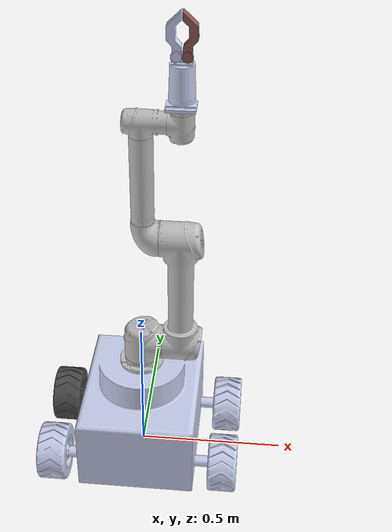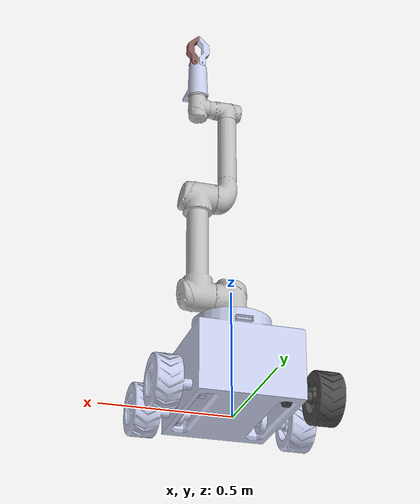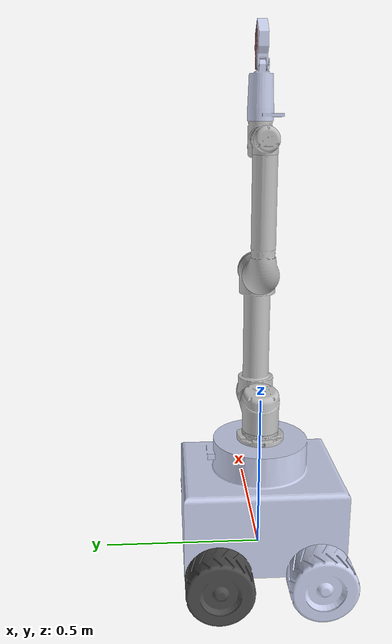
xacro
<?xml version="1.0" encoding="utf-8"?>
<robot
  name="ur5">
  <link
    name="base_link">
    <inertial>
      <origin
        xyz="-5.5152E-11 1.9904E-05 0.16846"
        rpy="0 0 0" />
      <mass
        value="55.664" />
      <inertia
        ixx="1.6047"
        ixy="-2.9519E-09"
        ixz="3.1164E-10"
        iyy="1.1438"
        iyz="-0.0001762"
        izz="1.7331" />
    </inertial>
    <visual>
      <origin
        xyz="0 0 0"
        rpy="0 0 0" />
      <geometry>
        <mesh
          filename="package://robot/meshes/base_link.STL" />
      </geometry>
      <material
        name="">
        <color
          rgba="0.79216 0.81961 0.93333 1" />
      </material>
    </visual>
    <collision>
      <origin
        xyz="0 0 0"
        rpy="0 0 0" />
      <geometry>
        <mesh
          filename="package://robot/meshes/base_link.STL" />
      </geometry>
    </collision>
  </link>
  <link
    name="wheel_1">
    <inertial>
      <origin
        xyz="0.19663 -2.7756E-16 -2.7756E-16"
        rpy="0 0 0" />
      <mass
        value="2.7279" />
      <inertia
        ixx="0.013534"
        ixy="-3.8224E-13"
        ixz="-8.2573E-13"
        iyy="0.0098358"
        iyz="-2.493E-12"
        izz="0.0098358" />
    </inertial>
    <visual>
      <origin
        xyz="0 0 0"
        rpy="0 0 0" />
      <geometry>
        <mesh
          filename="package://robot/meshes/wheel_1.STL" />
      </geometry>
      <material
        name="">
        <color
          rgba="0.79216 0.81961 0.93333 1" />
      </material>
    </visual>
    <collision>
      <origin
        xyz="0 0 0"
        rpy="0 0 0" />
      <geometry>
        <mesh
          filename="package://robot/meshes/wheel_1.STL" />
      </geometry>
    </collision>
  </link>
  <joint
    name="c_1"
    type="continuous">
    <origin
      xyz="0.09 -0.15 0.05"
      rpy="0 0 0" />
    <parent
      link="base_link" />
    <child
      link="wheel_1" />
    <axis
      xyz="-1 0 0" />
  </joint>
  <link
    name="wheel_2">
    <inertial>
      <origin
        xyz="0.19663 -1.1102E-16 -2.7756E-17"
        rpy="0 0 0" />
      <mass
        value="2.7279" />
      <inertia
        ixx="0.013534"
        ixy="-9.0945E-13"
        ixz="-2.879E-14"
        iyy="0.0098358"
        iyz="-1.9519E-12"
        izz="0.0098358" />
    </inertial>
    <visual>
      <origin
        xyz="0 0 0"
        rpy="0 0 0" />
      <geometry>
        <mesh
          filename="package://robot/meshes/wheel_2.STL" />
      </geometry>
      <material
        name="">
        <color
          rgba="0.79216 0.81961 0.93333 1" />
      </material>
    </visual>
    <collision>
      <origin
        xyz="0 0 0"
        rpy="0 0 0" />
      <geometry>
        <mesh
          filename="package://robot/meshes/wheel_2.STL" />
      </geometry>
    </collision>
  </link>
  <joint
    name="c_2"
    type="continuous">
    <origin
      xyz="0.09 0.15 0.05"
      rpy="0 0 0" />
    <parent
      link="base_link" />
    <child
      link="wheel_2" />
    <axis
      xyz="-1 0 0" />
  </joint>
  <link
    name="wheel_3">
    <inertial>
      <origin
        xyz="0.062982 -2.2204E-16 2.7756E-17"
        rpy="0 0 0" />
      <mass
        value="2.7485" />
      <inertia
        ixx="0.013714"
        ixy="-1.6296E-16"
        ixz="-2.1277E-13"
        iyy="0.0099243"
        iyz="-6.6257E-11"
        izz="0.0099243" />
    </inertial>
    <visual>
      <origin
        xyz="0 0 0"
        rpy="0 0 0" />
      <geometry>
        <mesh
          filename="package://robot/meshes/wheel_3.STL" />
      </geometry>
      <material
        name="">
        <color
          rgba="0.79216 0.81961 0.93333 1" />
      </material>
    </visual>
    <collision>
      <origin
        xyz="0 0 0"
        rpy="0 0 0" />
      <geometry>
        <mesh
          filename="package://robot/meshes/wheel_3.STL" />
      </geometry>
    </collision>
  </link>
  <joint
    name="c_3"
    type="continuous">
    <origin
      xyz="-0.34971 -0.15 0.05"
      rpy="0 0 0" />
    <parent
      link="base_link" />
    <child
      link="wheel_3" />
    <axis
      xyz="1 0 0" />
  </joint>
  <link
    name="wheel_4">
    <inertial>
      <origin
        xyz="0.062982 0 2.7756E-17"
        rpy="0 0 0" />
      <mass
        value="2.7485" />
      <inertia
        ixx="0.013714"
        ixy="-5.3206E-14"
        ixz="-2.0601E-13"
        iyy="0.0099243"
        iyz="-4.8086E-11"
        izz="0.0099243" />
    </inertial>
    <visual>
      <origin
        xyz="0 0 0"
        rpy="0 0 0" />
      <geometry>
        <mesh
          filename="package://robot/meshes/wheel_4.STL" />
      </geometry>
      <material
        name="">
        <color
          rgba="0.29412 0.29412 0.29412 1" />
      </material>
    </visual>
    <collision>
      <origin
        xyz="0 0 0"
        rpy="0 0 0" />
      <geometry>
        <mesh
          filename="package://robot/meshes/wheel_4.STL" />
      </geometry>
    </collision>
  </link>
  <joint
    name="c_4"
    type="continuous">
    <origin
      xyz="-0.34971 0.15 0.05"
      rpy="0 0 0" />
    <parent
      link="base_link" />
    <child
      link="wheel_4" />
    <axis
      xyz="-1 0 0" />
  </joint>
  <link
    name="base">
    <inertial>
      <origin
        xyz="-0.00059402 -1.0336E-08 0.013337"
        rpy="0 0 0" />
      <mass
        value="0.44131" />
      <inertia
        ixx="0.00055426"
        ixy="-1.9731E-10"
        ixz="2.1555E-06"
        iyy="0.0005192"
        iyz="6.7421E-12"
        izz="0.00096502" />
    </inertial>
    <visual>
      <origin
        xyz="0 0 0"
        rpy="0 0 0" />
      <geometry>
        <mesh
          filename="package://robot/meshes/base.STL" />
      </geometry>
      <material
        name="">
        <color
          rgba="0.75294 0.75294 0.75294 1" />
      </material>
    </visual>
    <collision>
      <origin
        xyz="0 0 0"
        rpy="0 0 0" />
      <geometry>
        <mesh
          filename="package://robot/meshes/base.STL" />
      </geometry>
    </collision>
  </link>
  <joint
    name="fix_b"
    type="fixed">
    <origin
      xyz="0 0 0.378"
      rpy="0 0 0" />
    <parent
      link="base_link" />
    <child
      link="base" />
    <axis
      xyz="0 0 0" />
  </joint>
  <link
    name="L_1">
    <inertial>
      <origin
        xyz="0.015035 5.242E-06 0.087179"
        rpy="0 0 0" />
      <mass
        value="1.515" />
      <inertia
        ixx="0.0024757"
        ixy="-3.8202E-07"
        ixz="-0.00032467"
        iyy="0.0025758"
        iyz="-1.478E-07"
        izz="0.0028299" />
    </inertial>
    <visual>
      <origin
        xyz="0 0 0"
        rpy="0 0 0" />
      <geometry>
        <mesh
          filename="package://robot/meshes/L_1.STL" />
      </geometry>
      <material
        name="">
        <color
          rgba="0.75294 0.75294 0.75294 1" />
      </material>
    </visual>
    <collision>
      <origin
        xyz="0 0 0"
        rpy="0 0 0" />
      <geometry>
        <mesh
          filename="package://robot/meshes/L_1.STL" />
      </geometry>
    </collision>
  </link>
  <joint
    name="rev1"
    type="revolute">
    <origin
      xyz="0 0 0"
      rpy="0 0 0" />
    <parent
      link="base" />
    <child
      link="L_1" />
    <axis
      xyz="0 0 -1" />
    <limit
      lower="-0.7854"
      upper="0.7854"
      effort="0"
      velocity="0" />
  </joint>
  <link
    name="L_2">
    <inertial>
      <origin
        xyz="0.079614 1.2378E-08 0.216"
        rpy="0 0 0" />
      <mass
        value="4.6673" />
      <inertia
        ixx="0.021929"
        ixy="-2.0695E-09"
        ixz="-7.1914E-09"
        iyy="0.021355"
        iyz="7.5736E-07"
        izz="0.0064409" />
    </inertial>
    <visual>
      <origin
        xyz="0 0 0"
        rpy="0 0 0" />
      <geometry>
        <mesh
          filename="package://robot/meshes/L_2.STL" />
      </geometry>
      <material
        name="">
        <color
          rgba="0.75294 0.75294 0.75294 1" />
      </material>
    </visual>
    <collision>
      <origin
        xyz="0 0 0"
        rpy="0 0 0" />
      <geometry>
        <mesh
          filename="package://robot/meshes/L_2.STL" />
      </geometry>
    </collision>
  </link>
  <joint
    name="rev_2"
    type="revolute">
    <origin
      xyz="0.053822 0 0.088"
      rpy="0 0 0" />
    <parent
      link="L_1" />
    <child
      link="L_2" />
    <axis
      xyz="1 0 0" />
    <limit
      lower="-2.4435"
      upper="2.4435"
      effort="0"
      velocity="0" />
  </joint>
  <link
    name="L_3">
    <inertial>
      <origin
        xyz="-0.032544 5.8224E-08 0.13872"
        rpy="0 0 0" />
      <mass
        value="2.0772" />
      <inertia
        ixx="0.011318"
        ixy="-1.1785E-08"
        ixz="0.00015564"
        iyy="0.011217"
        iyz="-1.2131E-08"
        izz="0.0018069" />
    </inertial>
    <visual>
      <origin
        xyz="0 0 0"
        rpy="0 0 0" />
      <geometry>
        <mesh
          filename="package://robot/meshes/L_3.STL" />
      </geometry>
      <material
        name="">
        <color
          rgba="0.75294 0.75294 0.75294 1" />
      </material>
    </visual>
    <collision>
      <origin
        xyz="0 0 0"
        rpy="0 0 0" />
      <geometry>
        <mesh
          filename="package://robot/meshes/L_3.STL" />
      </geometry>
    </collision>
  </link>
  <joint
    name="rev_3"
    type="revolute">
    <origin
      xyz="0 0 0.425"
      rpy="0 0 0" />
    <parent
      link="L_2" />
    <child
      link="L_3" />
    <axis
      xyz="1 0 0" />
    <limit
      lower="-2.618"
      upper="2.4435"
      effort="0"
      velocity="0" />
  </joint>
  <link
    name="L_4">
    <inertial>
      <origin
        xyz="0.019482 -4.8521E-09 0.04384"
        rpy="0 0 0" />
      <mass
        value="0.3979" />
      <inertia
        ixx="0.00031479"
        ixy="-2.7724E-10"
        ixz="-2.9885E-05"
        iyy="0.00027908"
        iyz="5.0526E-11"
        izz="0.00026101" />
    </inertial>
    <visual>
      <origin
        xyz="0 0 0"
        rpy="0 0 0" />
      <geometry>
        <mesh
          filename="package://robot/meshes/L_4.STL" />
      </geometry>
      <material
        name="">
        <color
          rgba="0.75294 0.75294 0.75294 1" />
      </material>
    </visual>
    <collision>
      <origin
        xyz="0 0 0"
        rpy="0 0 0" />
      <geometry>
        <mesh
          filename="package://robot/meshes/L_4.STL" />
      </geometry>
    </collision>
  </link>
  <joint
    name="rev_4"
    type="revolute">
    <origin
      xyz="-0.039772 0 0.358"
      rpy="0 0 0" />
    <parent
      link="L_3" />
    <child
      link="L_4" />
    <axis
      xyz="0 0 1" />
    <limit
      lower="0"
      upper="4.7124"
      effort="0"
      velocity="0" />
  </joint>
  <link
    name="L_5">
    <inertial>
      <origin
        xyz="0.04384 5.5856E-09 0.019482"
        rpy="0 0 0" />
      <mass
        value="0.3979" />
      <inertia
        ixx="0.00026101"
        ixy="1.8466E-10"
        ixz="-2.9885E-05"
        iyy="0.00027908"
        iyz="-1.8811E-10"
        izz="0.00031479" />
    </inertial>
    <visual>
      <origin
        xyz="0 0 0"
        rpy="0 0 0" />
      <geometry>
        <mesh
          filename="package://robot/meshes/L_5.STL" />
      </geometry>
      <material
        name="">
        <color
          rgba="0.75294 0.75294 0.75294 1" />
      </material>
    </visual>
    <collision>
      <origin
        xyz="0 0 0"
        rpy="0 0 0" />
      <geometry>
        <mesh
          filename="package://robot/meshes/L_5.STL" />
      </geometry>
    </collision>
  </link>
  <joint
    name="rev_5"
    type="revolute">
    <origin
      xyz="0.072228 0 0.049871"
      rpy="0.00063618 0 0" />
    <parent
      link="L_4" />
    <child
      link="L_5" />
    <axis
      xyz="1 0 0" />
    <limit
      lower="-3.141"
      upper="0.00063618"
      effort="0"
      velocity="0" />
  </joint>
  <link
    name="wrist">
    <inertial>
      <origin
        xyz="3.2299E-09 -0.0016506 0.079993"
        rpy="0 0 0" />
      <mass
        value="0.59767" />
      <inertia
        ixx="0.00094351"
        ixy="8.3773E-12"
        ixz="-1.6019E-11"
        iyy="0.0009319"
        iyz="-5.633E-05"
        izz="0.00049694" />
    </inertial>
    <visual>
      <origin
        xyz="0 0 0"
        rpy="0 0 0" />
      <geometry>
        <mesh
          filename="package://robot/meshes/wrist.STL" />
      </geometry>
      <material
        name="">
        <color
          rgba="0.79216 0.81961 0.93333 1" />
      </material>
    </visual>
    <collision>
      <origin
        xyz="0 0 0"
        rpy="0 0 0" />
      <geometry>
        <mesh
          filename="package://robot/meshes/wrist.STL" />
      </geometry>
    </collision>
  </link>
  <joint
    name="wrist_rev"
    type="revolute">
    <origin
      xyz="0.049871 0 0.051532"
      rpy="0 0 0" />
    <parent
      link="L_5" />
    <child
      link="wrist" />
    <axis
      xyz="0 0 1" />
    <limit
      lower="0"
      upper="6.2832"
      effort="0"
      velocity="0" />
  </joint>
  <link
    name="gripper_1">
    <inertial>
      <origin
        xyz="0.0084492 -0.00079641 0.058137"
        rpy="0 0 0" />
      <mass
        value="0.085821" />
      <inertia
        ixx="8.819E-05"
        ixy="-1.2405E-09"
        ixz="-5.0397E-07"
        iyy="9.1302E-05"
        iyz="2.0794E-09"
        izz="1.6218E-05" />
    </inertial>
    <visual>
      <origin
        xyz="0 0 0"
        rpy="0 0 0" />
      <geometry>
        <mesh
          filename="package://robot/meshes/gripper_1.STL" />
      </geometry>
      <material
        name="">
        <color
          rgba="0.53725 0.34902 0.33725 1" />
      </material>
    </visual>
    <collision>
      <origin
        xyz="0 0 0"
        rpy="0 0 0" />
      <geometry>
        <mesh
          filename="package://robot/meshes/gripper_1.STL" />
      </geometry>
    </collision>
  </link>
  <joint
    name="gripp_1"
    type="revolute">
    <origin
      xyz="0.016 0 0.16047"
      rpy="0 -0.017453 0" />
    <parent
      link="wrist" />
    <child
      link="gripper_1" />
    <axis
      xyz="0 -1 0" />
    <limit
      lower="-1.58825"
      upper="0.0065"
      effort="30"
      velocity="4" />
  </joint>
  <link
    name="gripper_2">
    <inertial>
      <origin
        xyz="-0.008452 0.014206 0.05813"
        rpy="0 0 0" />
      <mass
        value="0.08581" />
      <inertia
        ixx="8.8158E-05"
        ixy="6.0078E-10"
        ixz="5.1648E-07"
        iyy="9.1266E-05"
        iyz="1.8778E-09"
        izz="1.6211E-05" />
    </inertial>
    <visual>
      <origin
        xyz="0 0 0"
        rpy="0 0 0" />
      <geometry>
        <mesh
          filename="package://robot/meshes/gripper_2.STL" />
      </geometry>
      <material
        name="">
        <color
          rgba="0.79216 0.81961 0.93333 1" />
      </material>
    </visual>
    <collision>
      <origin
        xyz="0 0 0"
        rpy="0 0 0" />
      <geometry>
        <mesh
          filename="package://robot/meshes/gripper_2.STL" />
      </geometry>
    </collision>
  </link>
  <joint
    name="gripp_2"
    type="revolute">
    <origin
      xyz="-0.016 -0.015 0.16047"
      rpy="0 0.017453 0" />
    <parent
      link="wrist" />
    <child
      link="gripper_2" />
    <axis
      xyz="0 -1 0" />
    <limit
      lower="0.00"
      upper="1.58825"
      effort="30"
      velocity="4"  />
  </joint>
</robot>
